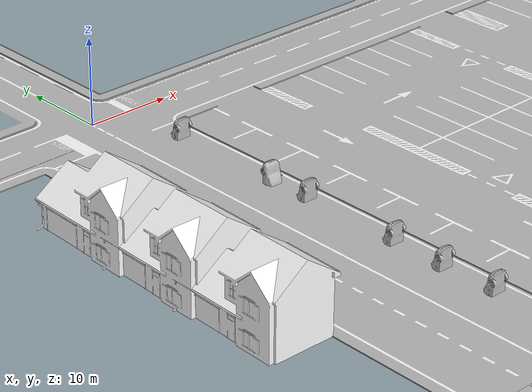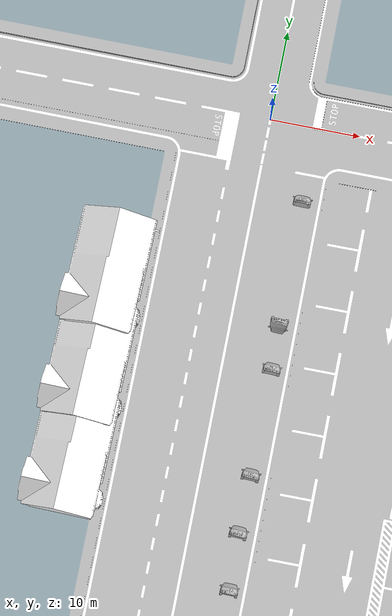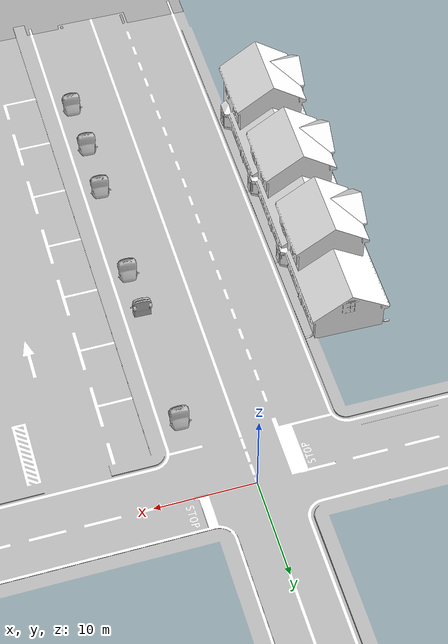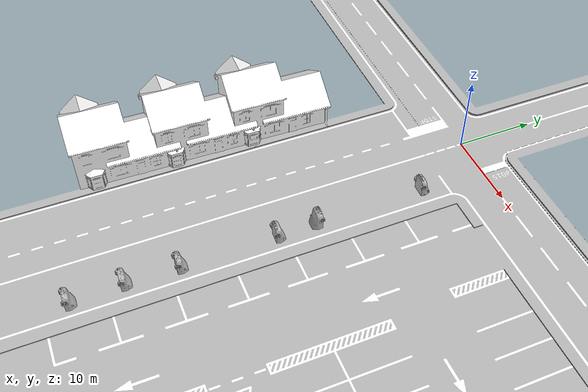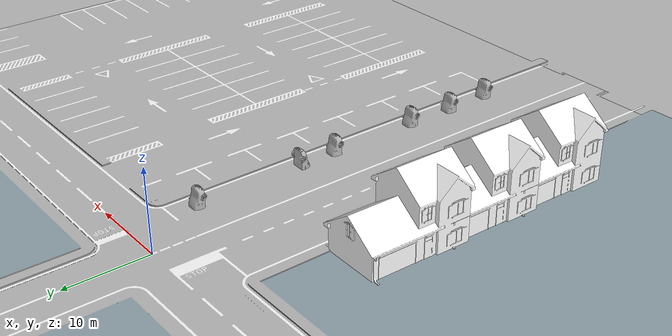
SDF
<sdf version="1.5">
 <world name="default">
  <scene><grid>false</grid></scene>
  <include><uri>model://sun</uri><pose>1.5 -30 100 0 0 0</pose></include>
  <include><uri>model://house_3</uri><name>house3_2</name><pose>-14 -20 0 0 0 1.55</pose></include>
  <include><uri>model://house_3</uri><name>house3_3</name><pose>-14 -30 0 0 0 1.55</pose></include>
  <include><uri>model://house_3</uri><name>house3_4</name><pose>-14 -40 0 0 0 1.55</pose></include>
  <include>
   <uri>model://opel</uri>
   <name>car10</name>
   <pose>5.1 -9.1 0 0 0 -0.018</pose>
   <static>true</static>
  </include>
  <include>
   <uri>model://opel</uri>
   <name>car11</name>
   <pose>5.23 -21.69 0 0 0 3.11</pose>
   <static>true</static>
  </include>
  <include>
   <uri>model://opel</uri>
   <name>car12</name>
   <pose>5.3 -27.86 0 0 0 -0.04</pose>
   <static>true</static>
  </include>
  <include>
   <uri>model://opel</uri>
   <name>car13</name>
   <pose>5.26 -39.56 0 0 0 -0.05</pose>
   <static>true</static>
  </include>
  <include>
   <uri>model://opel</uri>
   <name>car14</name>
   <pose>5.14 -45.89 0 0 0 -0.05</pose>
   <static>true</static>
  </include>
  <include>
   <uri>model://opel</uri>
   <name>car15</name>
   <pose>5.37 -52.07 0 0 0 -0.018</pose>
   <static>true</static>
  </include>
  <include><uri>model://parking</uri><pose>0 0 0 0 0 -1.5708</pose></include>
 </world>
</sdf>

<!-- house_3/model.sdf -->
<sdf version="1.5">
  <model name="House 3">
    <static>true</static>
    <link name="link">
      <collision name="collision">
        <geometry>
          <mesh>
            <uri>model://house_3/meshes/house_3.dae</uri>
            <scale>1.5 1.5 1.5</scale>
          </mesh>
        </geometry>
      </collision>
      <visual name="visual">
        <geometry>
          <mesh>
            <uri>model://house_3/meshes/house_3.dae</uri>
            <scale>1.5 1.5 1.5</scale>
          </mesh>
        </geometry>
        <material>
          <diffuse>1.0 1.0 1.0 1.0</diffuse>
          <specular>0.0 0.0 0.0 1.0</specular>
          <pbr>
            <metal>
              <albedo_map>model://house_3/materials/textures/house_3.png</albedo_map>
            </metal>
          </pbr>
        </material>
      </visual>
    </link>
  </model>
</sdf>

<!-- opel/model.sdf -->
<sdf version="1.4">
<model name="opel">
  <pose>0 0 0.5 0 0 0</pose>
  <static>true</static>

  <link name="opel">
      <gravity>0</gravity> <!-- No hace falta gravedad para estático -->
      <collision name="collision">
          <geometry>
              <mesh>
                  <uri>model://opel/meshes/model.obj</uri>
              </mesh>
          </geometry>
      </collision>
      <visual name="visual">
          <geometry>
              <mesh>
                  <uri>model://opel/meshes/model.obj</uri>
              </mesh>
          </geometry>
      </visual>
  </link>

  <!-- Plugins de control o sensores no necesarios para estático -->

  <!-- Cámaras -->

</model>
</sdf>

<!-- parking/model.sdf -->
<sdf version="1.5">
  <model name="stop">
    <static>true</static>
    <link name="link">
      <collision name="collision">
        <geometry>
          <plane>
            <normal>0 0 1</normal>
            <size>100 100</size>
          </plane>
        </geometry>
      </collision>
      <visual name="visual">
        <geometry>
          <mesh>
	          <uri>model://parking/meshes/parking.dae</uri>
            <scale>1.3 1.3 1.3</scale>
          </mesh>
        </geometry>
      </visual>
    </link>
  </model>
</sdf>
